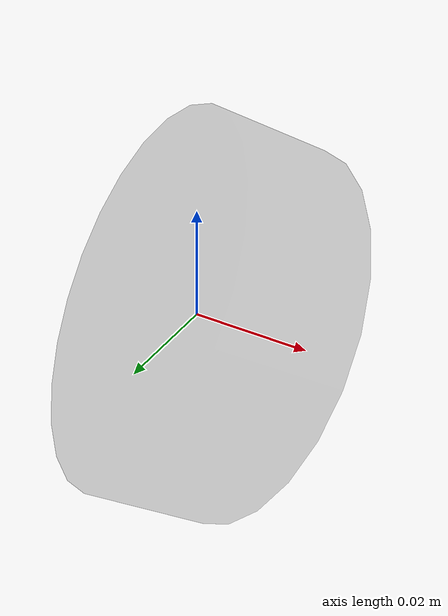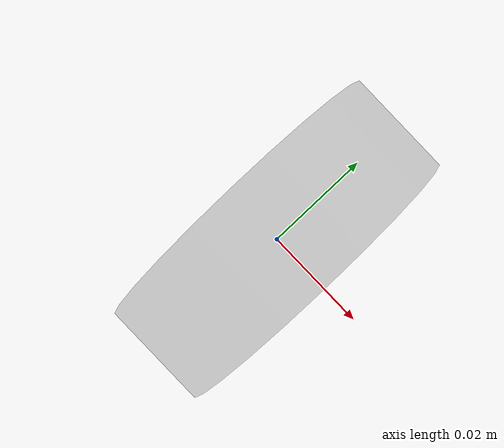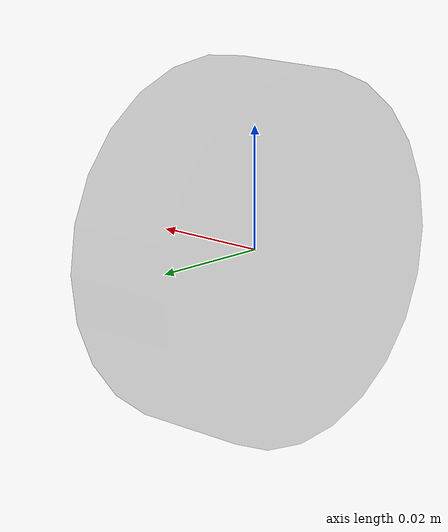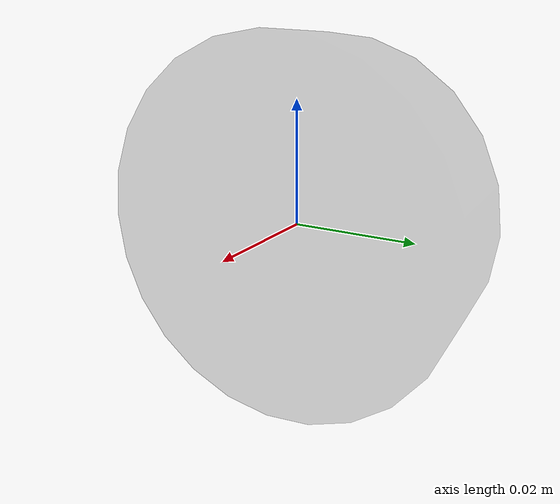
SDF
<?xml version="1.0" ?>
<sdf version="1.4">
	<model name="cam">
		<link name="body">

			<gravity>false</gravity>

			<inertial>
				<mass>0.02</mass>
			</inertial>

			<visual name="visual">
				<pose>0 0 0 0 1.5708 0</pose>
				<geometry>
					<cylinder>
						<length>0.02</length>
						<radius>0.03</radius>
					</cylinder>
				</geometry>
				<cast_shadows>false</cast_shadows>
				<material>
					<ambient>0.0 0.0 0.0 0.1</ambient>
					<diffuse>0.0 0.0 0.0 0.11</diffuse>
				</material>
			</visual>

			<sensor type="camera" name="cam">
				<update_rate>30.0</update_rate>
				<camera name="camera">
					<horizontal_fov>1.3962634</horizontal_fov>
					<image>
						<width>1200</width>
						<height>700</height>
						<format>R8G8B8</format>
					</image>
					<clip>
						<near>0.02</near>
						<far>300</far>
					</clip>
				</camera>
				<!-- Let robotNamespace empty - Use parent name as namespace -->
				<plugin name="camera_controller" filename="libgazebo_ros_camera.so">
					<robotNamespace>/</robotNamespace>
					<alwaysOn>true</alwaysOn>
					<updateRate>0.0</updateRate>
					<cameraName>camera</cameraName>
					<imageTopicName>image_raw</imageTopicName>
					<cameraInfoTopicName>camera_info</cameraInfoTopicName>
					<frameName>camera_link</frameName>
				</plugin>
			</sensor>
		</link>
	</model>
</sdf>
